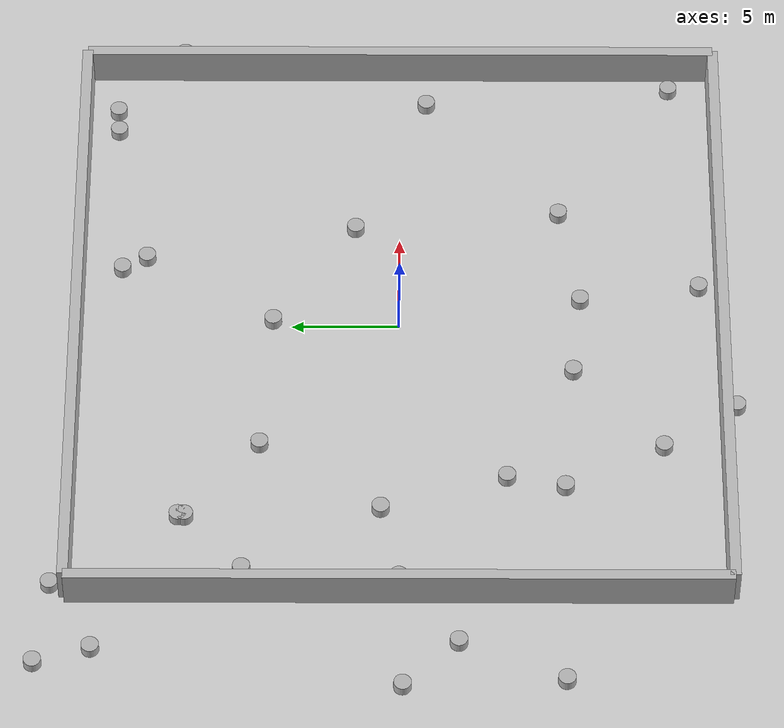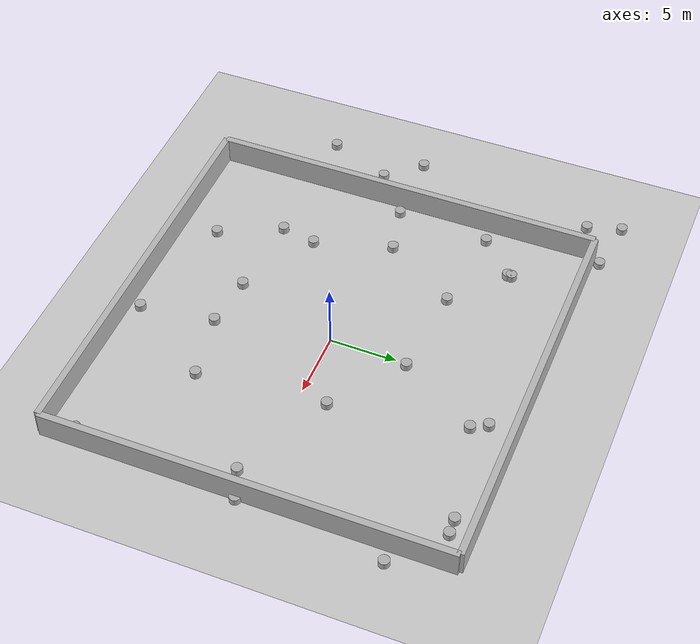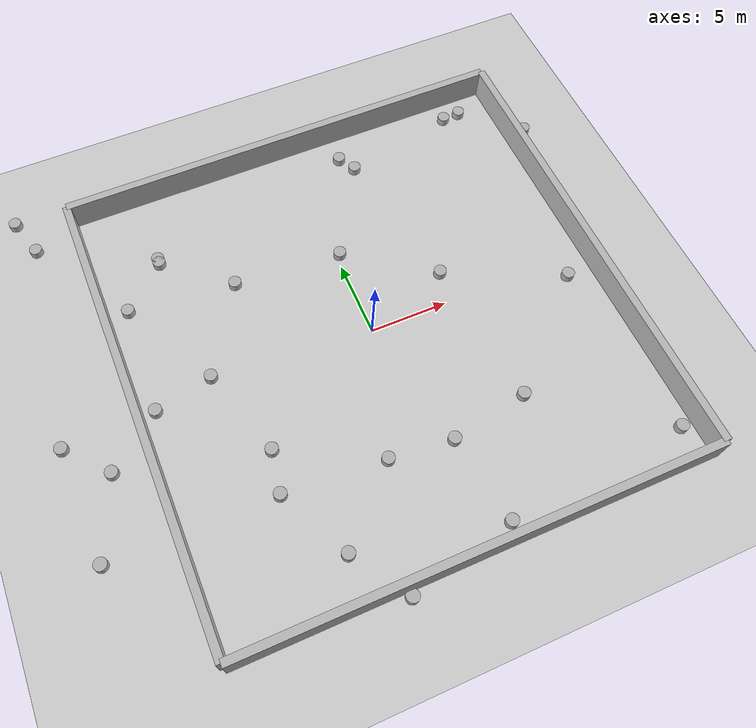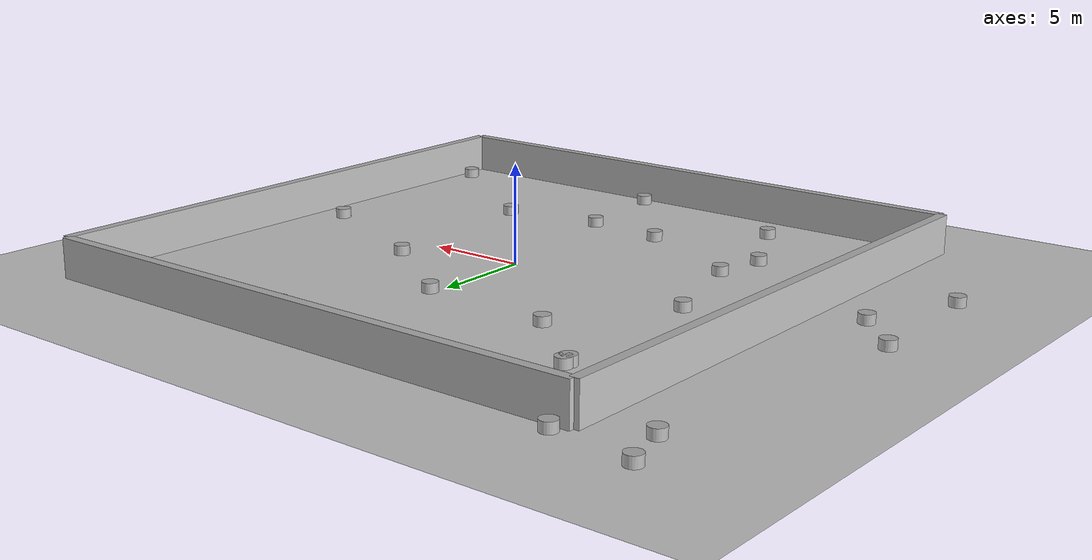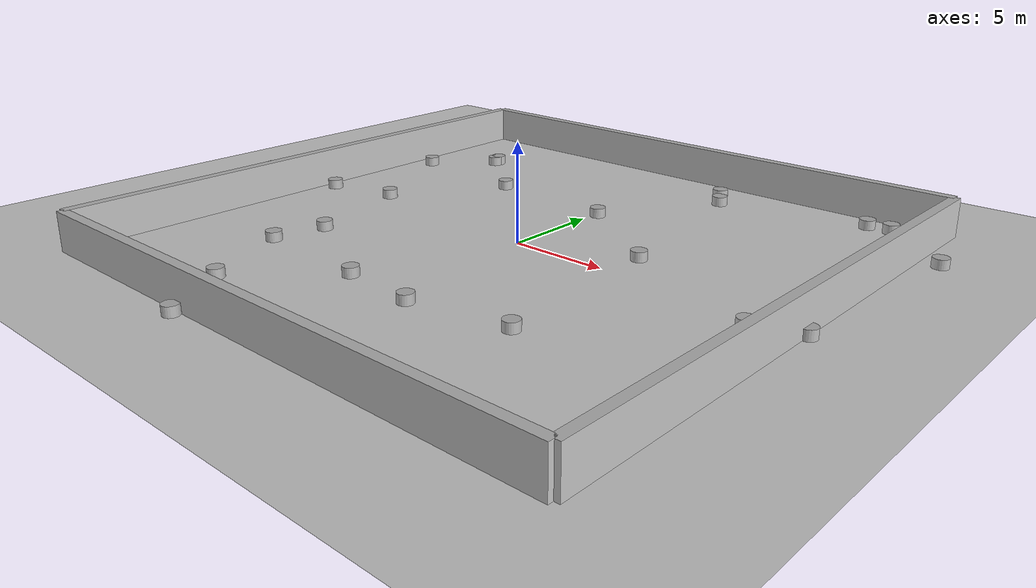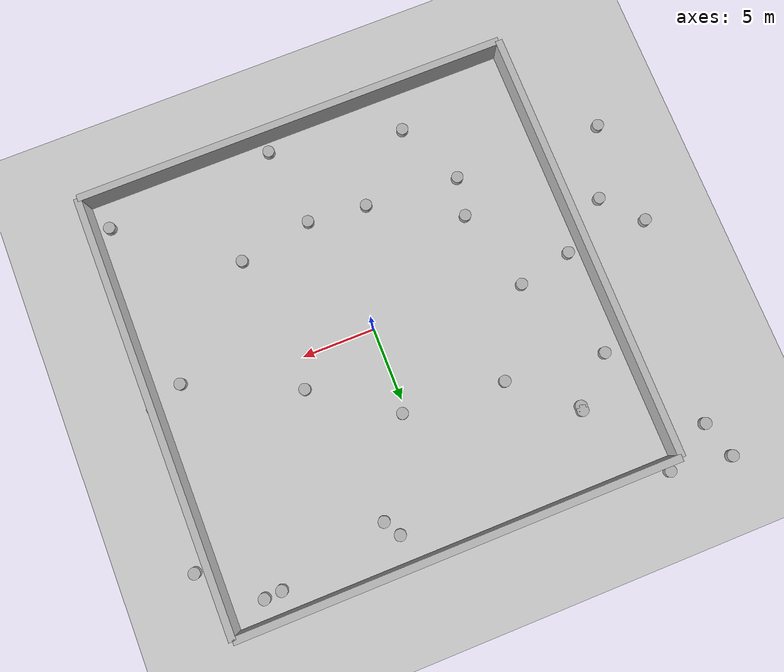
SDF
<sdf version='1.9'>
  <world name='empty'>
    <physics name='1ms' type='ignored'>
      <max_step_size>0.001</max_step_size>
      <real_time_factor>1</real_time_factor>
      <real_time_update_rate>1000</real_time_update_rate>
    </physics>
    <plugin name='gz::sim::systems::Physics' filename='ignition-gazebo-physics-system'/>
    <plugin name='gz::sim::systems::UserCommands' filename='ignition-gazebo-user-commands-system'/>
    <plugin name='gz::sim::systems::SceneBroadcaster' filename='ignition-gazebo-scene-broadcaster-system'/>
    <plugin name='gz::sim::systems::Contact' filename='ignition-gazebo-contact-system'/>
    <plugin name='gz::sim::systems::Sensors' filename='gz-sim-sensors-system'>

      <render_engine>ogre2</render_engine>
    </plugin>

     <plugin
      filename="gz-sim-imu-system"
      name="gz::sim::systems::Imu">
    </plugin>
    <gravity>0 0 -9.8</gravity>
    <magnetic_field>6e-06 2.3e-05 -4.2e-05</magnetic_field>
    <atmosphere type='adiabatic'/>
    <scene>
      <ambient>0.4 0.4 0.4 1</ambient>
      <background>0.7 0.7 0.7 1</background>
      <shadows>true</shadows>
    </scene>
    <model name='ground_plane'>
      <static>true</static>
      <link name='link'>
        <collision name='collision'>
          <geometry>
            <plane>
              <normal>0 0 1</normal>
              <size>100 100</size>
            </plane>
          </geometry>
          <surface>
            <friction>
              <ode/>
            </friction>
            <bounce/>
            <contact/>
          </surface>
        </collision>
        <visual name='visual'>
          <geometry>
            <plane>
              <normal>0 0 1</normal>
              <size>100 100</size>
            </plane>
          </geometry>
          <material>
            <ambient>0.8 0.8 0.8 1</ambient>
            <diffuse>0.8 0.8 0.8 1</diffuse>
            <specular>0.8 0.8 0.8 1</specular>
          </material>
        </visual>
        <pose>0 0 0 0 -0 0</pose>
        <inertial>
          <pose>0 0 0 0 -0 0</pose>
          <mass>1</mass>
          <inertia>
            <ixx>1</ixx>
            <ixy>0</ixy>
            <ixz>0</ixz>
            <iyy>1</iyy>
            <iyz>0</iyz>
            <izz>1</izz>
          </inertia>
        </inertial>
        <enable_wind>false</enable_wind>
      </link>
      <pose>0 0 0 0 -0 0</pose>
      <self_collide>false</self_collide>
    </model>
      <!-- Surrounding Walls -->
     <!-- Surrounding Walls -->
    <!-- Surrounding Walls (map footprint: 20x20 m) -->
    <model name='wall_north'>
      <pose>0 15 1 0 0 0</pose>
      <link name='link'>
        <collision name='collision'>
          <geometry><box><size>30.0 0.5 2.0</size></box></geometry>
        </collision>
        <visual name='visual'>
          <geometry><box><size>30.0 0.5 2.0</size></box></geometry>
        </visual>
      </link>
      <static>true</static>
    </model>
    <model name='wall_south'>
      <pose>0 -15 1 0 0 0</pose>
      <link name='link'>
        <collision name='collision'>
          <geometry><box><size>30.0 0.5 2.0</size></box></geometry>
        </collision>
        <visual name='visual'>
          <geometry><box><size>30.0 0.5 2.0</size></box></geometry>
        </visual>
      </link>
      <static>true</static>
    </model>
    <model name='wall_east'>
      <pose>15 0 1 0 0 0</pose>
      <link name='link'>
        <collision name='collision'>
          <geometry><box><size>0.5 30.0 2.0</size></box></geometry>
        </collision>
        <visual name='visual'>
          <geometry><box><size>0.5 30.0 2.0</size></box></geometry>
        </visual>
      </link>
      <static>true</static>
    </model>
    <model name='wall_west'>
      <pose>-15 0 1 0 0 0</pose>
      <link name='link'>
        <collision name='collision'>
          <geometry><box><size>0.5 30.0 2.0</size></box></geometry>
        </collision>
        <visual name='visual'>
          <geometry><box><size>0.5 30.0 2.0</size></box></geometry>
        </visual>
      </link>
      <static>true</static>
    </model>

    <model name='cylinder_0'>
      <pose>-13.563 7.095 0.250 0 0 0</pose>
      <link name='link'>
        <collision name='collision'>
          <geometry>
            <cylinder>
              <radius>0.4</radius>
              <length>0.5</length>
            </cylinder>
          </geometry>
        </collision>
        <visual name='visual'>
          <geometry>
            <cylinder>
              <radius>0.4</radius>
              <length>0.5</length>
            </cylinder>
          </geometry>
          <material>
            <ambient>0.3 0.3 0.3 1</ambient>
            <diffuse>0.7 0.7 0.7 1</diffuse>
          </material>
        </visual>
      </link>
      <static>false</static>
    </model>

    <model name='cylinder_1'>
       <pose>12.640  13.500 0.250 0 0 0</pose>
      <link name='link'>
        <collision name='collision'>
          <geometry>
            <cylinder>
              <radius>0.4</radius>
              <length>0.5</length>
            </cylinder>
          </geometry>
        </collision>
        <visual name='visual'>
          <geometry>
            <cylinder>
              <radius>0.4</radius>
              <length>0.5</length>
            </cylinder>
          </geometry>
          <material>
            <ambient>0.3 0.3 0.3 1</ambient>
            <diffuse>0.7 0.7 0.7 1</diffuse>
          </material>
        </visual>
      </link>
      <static>false</static>
    </model>

    <model name='cylinder_2'>
        <pose> 3.247  13.000 0.250 0 0 0</pose>
      <link name='link'>
        <collision name='collision'>
          <geometry>
            <cylinder>
              <radius>0.4</radius>
              <length>0.5</length>
            </cylinder>
          </geometry>
        </collision>
        <visual name='visual'>
          <geometry>
            <cylinder>
              <radius>0.4</radius>
              <length>0.5</length>
            </cylinder>
          </geometry>
          <material>
            <ambient>0.3 0.3 0.3 1</ambient>
            <diffuse>0.7 0.7 0.7 1</diffuse>
          </material>
        </visual>
      </link>
      <static>false</static>
    </model>

    <model name='cylinder_3'>
      <pose>6.5 -7.5 0.250 0 0 0</pose>
      <link name='link'>
        <collision name='collision'>
          <geometry>
            <cylinder>
              <radius>0.4</radius>
              <length>0.5</length>
            </cylinder>
          </geometry>
        </collision>
        <visual name='visual'>
          <geometry>
            <cylinder>
              <radius>0.4</radius>
              <length>0.5</length>
            </cylinder>
          </geometry>
          <material>
            <ambient>0.3 0.3 0.3 1</ambient>
            <diffuse>0.7 0.7 0.7 1</diffuse>
          </material>
        </visual>
      </link>
      <static>false</static>
    </model>

    <model name='cylinder_4'>
       <pose>14.000 -12.915 0.250 0 0 0</pose>
      <link name='link'>
        <collision name='collision'>
          <geometry>
            <cylinder>
              <radius>0.4</radius>
              <length>0.5</length>
            </cylinder>
          </geometry>
        </collision>
        <visual name='visual'>
          <geometry>
            <cylinder>
              <radius>0.4</radius>
              <length>0.5</length>
            </cylinder>
          </geometry>
          <material>
            <ambient>0.3 0.3 0.3 1</ambient>
            <diffuse>0.7 0.7 0.7 1</diffuse>
          </material>
        </visual>
      </link>
      <static>false</static>
    </model>

    <model name='cylinder_5'>
       <pose>-14.000   0.000 0.250 0 0 0</pose>
      <link name='link'>
        <collision name='collision'>
          <geometry>
            <cylinder>
              <radius>0.4</radius>
              <length>0.5</length>
            </cylinder>
          </geometry>
        </collision>
        <visual name='visual'>
          <geometry>
            <cylinder>
              <radius>0.4</radius>
              <length>0.5</length>
            </cylinder>
          </geometry>
          <material>
            <ambient>0.3 0.3 0.3 1</ambient>
            <diffuse>0.7 0.7 0.7 1</diffuse>
          </material>
        </visual>
      </link>
      <static>false</static>
    </model>

    <model name='cylinder_6'>
      <pose>-19.704 -0.168 0.250 0 0 0</pose>
      <link name='link'>
        <collision name='collision'>
          <geometry>
            <cylinder>
              <radius>0.4</radius>
              <length>0.5</length>
            </cylinder>
          </geometry>
        </collision>
        <visual name='visual'>
          <geometry>
            <cylinder>
              <radius>0.4</radius>
              <length>0.5</length>
            </cylinder>
          </geometry>
          <material>
            <ambient>0.3 0.3 0.3 1</ambient>
            <diffuse>0.7 0.7 0.7 1</diffuse>
          </material>
        </visual>
      </link>
      <static>false</static>
    </model>

    <model name='cylinder_7'>
      <pose>0.273 5.877 0.250 0 0 0</pose>
      <link name='link'>
        <collision name='collision'>
          <geometry>
            <cylinder>
              <radius>0.4</radius>
              <length>0.5</length>
            </cylinder>
          </geometry>
        </collision>
        <visual name='visual'>
          <geometry>
            <cylinder>
              <radius>0.4</radius>
              <length>0.5</length>
            </cylinder>
          </geometry>
          <material>
            <ambient>0.3 0.3 0.3 1</ambient>
            <diffuse>0.7 0.7 0.7 1</diffuse>
          </material>
        </visual>
      </link>
      <static>false</static>
    </model>

    <model name='cylinder_8'>
      <pose>15.277 -0.408 0.250 0 0 0</pose>
      <link name='link'>
        <collision name='collision'>
          <geometry>
            <cylinder>
              <radius>0.4</radius>
              <length>0.5</length>
            </cylinder>
          </geometry>
        </collision>
        <visual name='visual'>
          <geometry>
            <cylinder>
              <radius>0.4</radius>
              <length>0.5</length>
            </cylinder>
          </geometry>
          <material>
            <ambient>0.3 0.3 0.3 1</ambient>
            <diffuse>0.7 0.7 0.7 1</diffuse>
          </material>
        </visual>
      </link>
      <static>false</static>
    </model>

    <model name='cylinder_9'>
      <pose>-8.550 -4.918 0.250 0 0 0</pose>
      <link name='link'>
        <collision name='collision'>
          <geometry>
            <cylinder>
              <radius>0.4</radius>
              <length>0.5</length>
            </cylinder>
          </geometry>
        </collision>
        <visual name='visual'>
          <geometry>
            <cylinder>
              <radius>0.4</radius>
              <length>0.5</length>
            </cylinder>
          </geometry>
          <material>
            <ambient>0.3 0.3 0.3 1</ambient>
            <diffuse>0.7 0.7 0.7 1</diffuse>
          </material>
        </visual>
      </link>
      <static>false</static>
    </model>

    <model name='cylinder_10'>
      <pose>-18.537 16.267 0.250 0 0 0</pose>
      <link name='link'>
        <collision name='collision'>
          <geometry>
            <cylinder>
              <radius>0.4</radius>
              <length>0.5</length>
            </cylinder>
          </geometry>
        </collision>
        <visual name='visual'>
          <geometry>
            <cylinder>
              <radius>0.4</radius>
              <length>0.5</length>
            </cylinder>
          </geometry>
          <material>
            <ambient>0.3 0.3 0.3 1</ambient>
            <diffuse>0.7 0.7 0.7 1</diffuse>
          </material>
        </visual>
      </link>
      <static>false</static>
    </model>

    <model name='cylinder_11'>
      <pose>-17.421 -2.680 0.250 0 0 0</pose>
      <link name='link'>
        <collision name='collision'>
          <geometry>
            <cylinder>
              <radius>0.4</radius>
              <length>0.5</length>
            </cylinder>
          </geometry>
        </collision>
        <visual name='visual'>
          <geometry>
            <cylinder>
              <radius>0.4</radius>
              <length>0.5</length>
            </cylinder>
          </geometry>
          <material>
            <ambient>0.3 0.3 0.3 1</ambient>
            <diffuse>0.7 0.7 0.7 1</diffuse>
          </material>
        </visual>
      </link>
      <static>false</static>
    </model>

    <model name='cylinder_12'>
      <pose>-17.778 13.733 0.250 0 0 0</pose>
      <link name='link'>
        <collision name='collision'>
          <geometry>
            <cylinder>
              <radius>0.4</radius>
              <length>0.5</length>
            </cylinder>
          </geometry>
        </collision>
        <visual name='visual'>
          <geometry>
            <cylinder>
              <radius>0.4</radius>
              <length>0.5</length>
            </cylinder>
          </geometry>
          <material>
            <ambient>0.3 0.3 0.3 1</ambient>
            <diffuse>0.7 0.7 0.7 1</diffuse>
          </material>
        </visual>
      </link>
      <static>false</static>
    </model>

    <model name='cylinder_13'>
      <pose>-2.6 -8.047 0.250 0 0 0</pose>
      <link name='link'>
        <collision name='collision'>
          <geometry>
            <cylinder>
              <radius>0.4</radius>
              <length>0.5</length>
            </cylinder>
          </geometry>
        </collision>
        <visual name='visual'>
          <geometry>
            <cylinder>
              <radius>0.4</radius>
              <length>0.5</length>
            </cylinder>
          </geometry>
          <material>
            <ambient>0.3 0.3 0.3 1</ambient>
            <diffuse>0.7 0.7 0.7 1</diffuse>
          </material>
        </visual>
      </link>
      <static>false</static>
    </model>

    <model name='cylinder_14'>
      <pose>3.902 11.857 0.250 0 0 0</pose>
      <link name='link'>
        <collision name='collision'>
          <geometry>
            <cylinder>
              <radius>0.4</radius>
              <length>0.5</length>
            </cylinder>
          </geometry>
        </collision>
        <visual name='visual'>
          <geometry>
            <cylinder>
              <radius>0.4</radius>
              <length>0.5</length>
            </cylinder>
          </geometry>
          <material>
            <ambient>0.3 0.3 0.3 1</ambient>
            <diffuse>0.7 0.7 0.7 1</diffuse>
          </material>
        </visual>
      </link>
      <static>false</static>
    </model>

    <model name='cylinder_15'>
      <pose>-10.696 10.029 0.250 0 0 0</pose>
      <link name='link'>
        <collision name='collision'>
          <geometry>
            <cylinder>
              <radius>0.4</radius>
              <length>0.5</length>
            </cylinder>
          </geometry>
        </collision>
        <visual name='visual'>
          <geometry>
            <cylinder>
              <radius>0.4</radius>
              <length>0.5</length>
            </cylinder>
          </geometry>
          <material>
            <ambient>0.3 0.3 0.3 1</ambient>
            <diffuse>0.7 0.7 0.7 1</diffuse>
          </material>
        </visual>
      </link>
      <static>false</static>
    </model>

    <model name='cylinder_16'>
      <pose>-4.596 -15.545 0.250 0 0 0</pose>
      <link name='link'>
        <collision name='collision'>
          <geometry>
            <cylinder>
              <radius>0.4</radius>
              <length>0.5</length>
            </cylinder>
          </geometry>
        </collision>
        <visual name='visual'>
          <geometry>
            <cylinder>
              <radius>0.4</radius>
              <length>0.5</length>
            </cylinder>
          </geometry>
          <material>
            <ambient>0.3 0.3 0.3 1</ambient>
            <diffuse>0.7 0.7 0.7 1</diffuse>
          </material>
        </visual>
      </link>
      <static>false</static>
    </model>

    <model name='cylinder_17'>
      <pose>11.449 13.430 0.250 0 0 0</pose>
      <link name='link'>
        <collision name='collision'>
          <geometry>
            <cylinder>
              <radius>0.4</radius>
              <length>0.5</length>
            </cylinder>
          </geometry>
        </collision>
        <visual name='visual'>
          <geometry>
            <cylinder>
              <radius>0.4</radius>
              <length>0.5</length>
            </cylinder>
          </geometry>
          <material>
            <ambient>0.3 0.3 0.3 1</ambient>
            <diffuse>0.7 0.7 0.7 1</diffuse>
          </material>
        </visual>
      </link>
      <static>false</static>
    </model>

    <model name='cylinder_18'>
      <pose>-9.058 -7.580 0.250 0 0 0</pose>
      <link name='link'>
        <collision name='collision'>
          <geometry>
            <cylinder>
              <radius>0.4</radius>
              <length>0.5</length>
            </cylinder>
          </geometry>
        </collision>
        <visual name='visual'>
          <geometry>
            <cylinder>
              <radius>0.4</radius>
              <length>0.5</length>
            </cylinder>
          </geometry>
          <material>
            <ambient>0.3 0.3 0.3 1</ambient>
            <diffuse>0.7 0.7 0.7 1</diffuse>
          </material>
        </visual>
      </link>
      <static>false</static>
    </model>

    <model name='cylinder_19'>
      <pose>-10.713 9.733 0.250 0 0 0</pose>
      <link name='link'>
        <collision name='collision'>
          <geometry>
            <cylinder>
              <radius>0.4</radius>
              <length>0.5</length>
            </cylinder>
          </geometry>
        </collision>
        <visual name='visual'>
          <geometry>
            <cylinder>
              <radius>0.4</radius>
              <length>0.5</length>
            </cylinder>
          </geometry>
          <material>
            <ambient>0.3 0.3 0.3 1</ambient>
            <diffuse>0.7 0.7 0.7 1</diffuse>
          </material>
        </visual>
      </link>
      <static>false</static>
    </model>

    <model name='cylinder_20'>
      <pose>1.446 -8.433 0.250 0 0 0</pose>
      <link name='link'>
        <collision name='collision'>
          <geometry>
            <cylinder>
              <radius>0.4</radius>
              <length>0.5</length>
            </cylinder>
          </geometry>
        </collision>
        <visual name='visual'>
          <geometry>
            <cylinder>
              <radius>0.4</radius>
              <length>0.5</length>
            </cylinder>
          </geometry>
          <material>
            <ambient>0.3 0.3 0.3 1</ambient>
            <diffuse>0.7 0.7 0.7 1</diffuse>
          </material>
        </visual>
      </link>
      <static>false</static>
    </model>

    <model name='cylinder_21'>
      <pose>-10.266 0.837 0.250 0 0 0</pose>
      <link name='link'>
        <collision name='collision'>
          <geometry>
            <cylinder>
              <radius>0.4</radius>
              <length>0.5</length>
            </cylinder>
          </geometry>
        </collision>
        <visual name='visual'>
          <geometry>
            <cylinder>
              <radius>0.4</radius>
              <length>0.5</length>
            </cylinder>
          </geometry>
          <material>
            <ambient>0.3 0.3 0.3 1</ambient>
            <diffuse>0.7 0.7 0.7 1</diffuse>
          </material>
        </visual>
      </link>
      <static>false</static>
    </model>

    <model name='cylinder_22'>
        <pose> 2.209 -14.000 0.250 0 0 0</pose>
      <link name='link'>
        <collision name='collision'>
          <geometry>
            <cylinder>
              <radius>0.4</radius>
              <length>0.5</length>
            </cylinder>
          </geometry>
        </collision>
        <visual name='visual'>
          <geometry>
            <cylinder>
              <radius>0.4</radius>
              <length>0.5</length>
            </cylinder>
          </geometry>
          <material>
            <ambient>0.3 0.3 0.3 1</ambient>
            <diffuse>0.7 0.7 0.7 1</diffuse>
          </material>
        </visual>
      </link>
      <static>false</static>
    </model>

    <model name='cylinder_23'>
      <pose>13.081 -1.269 0.250 0 0 0</pose>
      <link name='link'>
        <collision name='collision'>
          <geometry>
            <cylinder>
              <radius>0.4</radius>
              <length>0.5</length>
            </cylinder>
          </geometry>
        </collision>
        <visual name='visual'>
          <geometry>
            <cylinder>
              <radius>0.4</radius>
              <length>0.5</length>
            </cylinder>
          </geometry>
          <material>
            <ambient>0.3 0.3 0.3 1</ambient>
            <diffuse>0.7 0.7 0.7 1</diffuse>
          </material>
        </visual>
      </link>
      <static>false</static>
    </model>

    <model name='cylinder_24'>
      <pose>16.219 10.394 0.250 0 0 0</pose>
      <link name='link'>
        <collision name='collision'>
          <geometry>
            <cylinder>
              <radius>0.4</radius>
              <length>0.5</length>
            </cylinder>
          </geometry>
        </collision>
        <visual name='visual'>
          <geometry>
            <cylinder>
              <radius>0.4</radius>
              <length>0.5</length>
            </cylinder>
          </geometry>
          <material>
            <ambient>0.3 0.3 0.3 1</ambient>
            <diffuse>0.7 0.7 0.7 1</diffuse>
          </material>
        </visual>
      </link>
      <static>false</static>
    </model>

    <model name='cylinder_25'>
      <pose>-14.397 15.688 0.250 0 0 0</pose>
      <link name='link'>
        <collision name='collision'>
          <geometry>
            <cylinder>
              <radius>0.4</radius>
              <length>0.5</length>
            </cylinder>
          </geometry>
        </collision>
        <visual name='visual'>
          <geometry>
            <cylinder>
              <radius>0.4</radius>
              <length>0.5</length>
            </cylinder>
          </geometry>
          <material>
            <ambient>0.3 0.3 0.3 1</ambient>
            <diffuse>0.7 0.7 0.7 1</diffuse>
          </material>
        </visual>
      </link>
      <static>false</static>
    </model>

    <model name='cylinder_26'>
      <pose>-6.845 -12.128 0.250 0 0 0</pose>
      <link name='link'>
        <collision name='collision'>
          <geometry>
            <cylinder>
              <radius>0.4</radius>
              <length>0.5</length>
            </cylinder>
          </geometry>
        </collision>
        <visual name='visual'>
          <geometry>
            <cylinder>
              <radius>0.4</radius>
              <length>0.5</length>
            </cylinder>
          </geometry>
          <material>
            <ambient>0.3 0.3 0.3 1</ambient>
            <diffuse>0.7 0.7 0.7 1</diffuse>
          </material>
        </visual>
      </link>
      <static>false</static>
    </model>

    <model name='cylinder_27'>
      <pose>-6.729 6.4 0.250 0 0 0</pose>
      <link name='link'>
        <collision name='collision'>
          <geometry>
            <cylinder>
              <radius>0.4</radius>
              <length>0.5</length>
            </cylinder>
          </geometry>
        </collision>
        <visual name='visual'>
          <geometry>
            <cylinder>
              <radius>0.4</radius>
              <length>0.5</length>
            </cylinder>
          </geometry>
          <material>
            <ambient>0.3 0.3 0.3 1</ambient>
            <diffuse>0.7 0.7 0.7 1</diffuse>
          </material>
        </visual>
      </link>
      <static>false</static>
    </model>

    <model name='cylinder_28'>
      <pose>5.627 2.071 0.250 0 0 0</pose>
      <link name='link'>
        <collision name='collision'>
          <geometry>
            <cylinder>
              <radius>0.4</radius>
              <length>0.5</length>
            </cylinder>
          </geometry>
        </collision>
        <visual name='visual'>
          <geometry>
            <cylinder>
              <radius>0.4</radius>
              <length>0.5</length>
            </cylinder>
          </geometry>
          <material>
            <ambient>0.3 0.3 0.3 1</ambient>
            <diffuse>0.7 0.7 0.7 1</diffuse>
          </material>
        </visual>
      </link>
      <static>false</static>
    </model>

    <model name='cylinder_29'>
      <pose>-19.400 -7.464 0.250 0 0 0</pose>
      <link name='link'>
        <collision name='collision'>
          <geometry>
            <cylinder>
              <radius>0.4</radius>
              <length>0.5</length>
            </cylinder>
          </geometry>
        </collision>
        <visual name='visual'>
          <geometry>
            <cylinder>
              <radius>0.4</radius>
              <length>0.5</length>
            </cylinder>
          </geometry>
          <material>
            <ambient>0.3 0.3 0.3 1</ambient>
            <diffuse>0.7 0.7 0.7 1</diffuse>
          </material>
        </visual>
      </link>
      <static>false</static>
    </model>

    <light name='sun' type='directional'>
      <pose>0 0 10 0 -0 0</pose>
      <cast_shadows>true</cast_shadows>
      <intensity>1</intensity>
      <direction>-0.5 0.1 -0.9</direction>
      <diffuse>0.8 0.8 0.8 1</diffuse>
      <specular>0.2 0.2 0.2 1</specular>
      <attenuation>
        <range>1000</range>
        <linear>0.01</linear>
        <constant>0.90000000000000002</constant>
        <quadratic>0.001</quadratic>
      </attenuation>
      <spot>
        <inner_angle>0</inner_angle>
        <outer_angle>0</outer_angle>
        <falloff>0</falloff>
      </spot>
    </light>
  </world>
</sdf>
